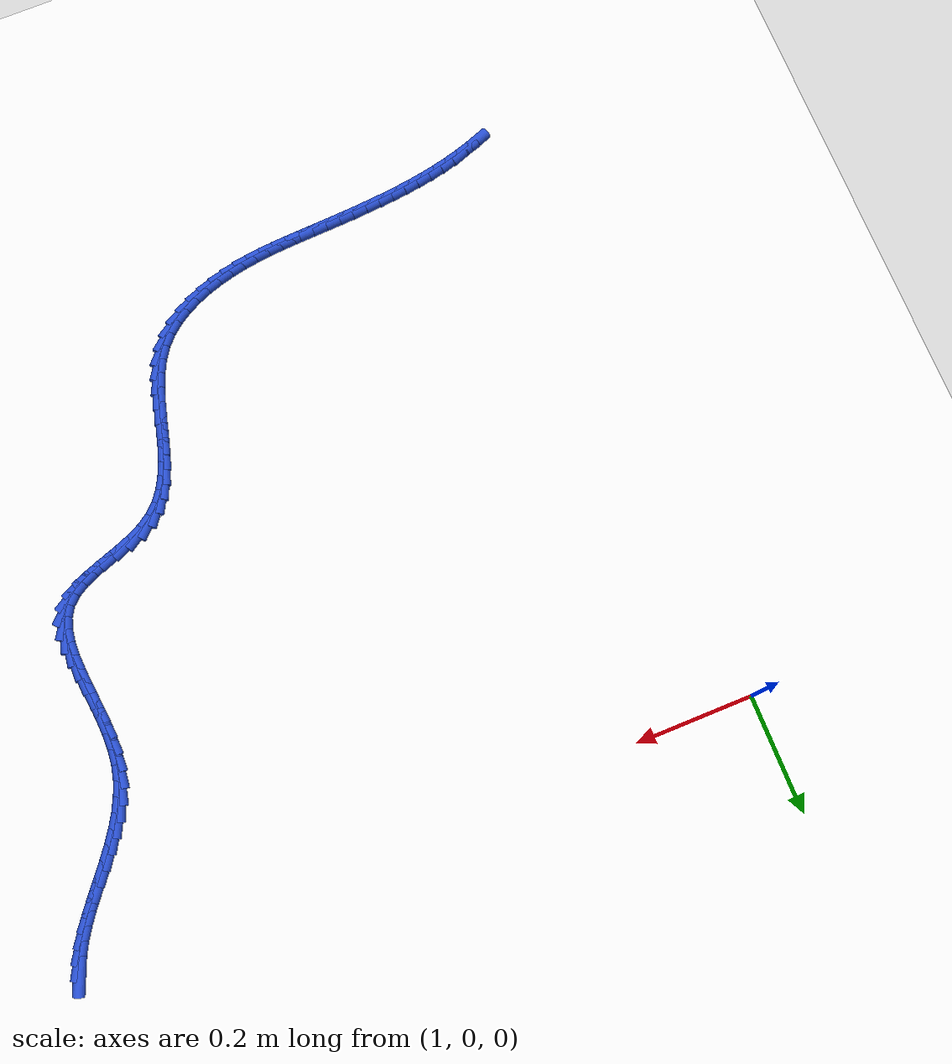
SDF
<sdf version="1.6">
 <world name="default">
  <model name="ground_plane">
   <static>1</static>
   <link name="link">
    <collision name="collision">
     <geometry><plane><normal>0 0 1</normal><size>100 100</size></plane></geometry>
     <surface><friction><ode><mu>100</mu><mu2>50</mu2></ode></friction></surface>
    </collision>
    <visual name="visual">
     <cast_shadows>0</cast_shadows>
     <geometry><plane><normal>0 0 1</normal><size>100 100</size></plane></geometry>
     <material>
      <script><uri>file://media/materials/scripts/gazebo.material</uri><name>Gazebo/WhiteGlow</name></script>
     </material>
    </visual>
   </link>
  </model>
  <model name="line">
   <link name="link_140">
    <pose>2.1353769060398338 -0.003315976786492622 0.01 0 1.57 1.183256370223583</pose>
    <collision name="collision">
     <geometry><cylinder><radius>0.01</radius><length>0.08</length></cylinder></geometry>
    </collision>
    <visual name="visual">
     <material>
      <script><name>Gazebo/Blue</name><uri>file://media/materials/scripts/gazebo.material</uri></script>
     </material>
     <geometry><cylinder><radius>0.01</radius><length>0.08</length></cylinder></geometry>
    </visual>
   </link>
   <link name="link_141">
    <pose>2.126784028048218 -0.024367556085011243 0.01 0 1.57 1.0801431410921</pose>
    <collision name="collision">
     <geometry><cylinder><radius>0.01</radius><length>0.08</length></cylinder></geometry>
    </collision>
    <visual name="visual">
     <material>
      <script><name>Gazebo/Blue</name><uri>file://media/materials/scripts/gazebo.material</uri></script>
     </material>
     <geometry><cylinder><radius>0.01</radius><length>0.08</length></cylinder></geometry>
    </visual>
   </link>
   <link name="link_142">
    <pose>2.1158497477569953 -0.04483501825897099 0.01 0 1.57 1.0022617322084868</pose>
    <collision name="collision">
     <geometry><cylinder><radius>0.01</radius><length>0.08</length></cylinder></geometry>
    </collision>
    <visual name="visual">
     <material>
      <script><name>Gazebo/Blue</name><uri>file://media/materials/scripts/gazebo.material</uri></script>
     </material>
     <geometry><cylinder><radius>0.01</radius><length>0.08</length></cylinder></geometry>
    </visual>
   </link>
   <link name="link_143">
    <pose>2.1030426288700794 -0.06488049957653083 0.01 0 1.57 0.9479147500619066</pose>
    <collision name="collision">
     <geometry><cylinder><radius>0.01</radius><length>0.08</length></cylinder></geometry>
    </collision>
    <visual name="visual">
     <material>
      <script><name>Gazebo/Blue</name><uri>file://media/materials/scripts/gazebo.material</uri></script>
     </material>
     <geometry><cylinder><radius>0.01</radius><length>0.08</length></cylinder></geometry>
    </visual>
   </link>
   <link name="link_144">
    <pose>2.0888312350913862 -0.08466613630584978 0.01 0 1.57 0.9150195043669032</pose>
    <collision name="collision">
     <geometry><cylinder><radius>0.01</radius><length>0.08</length></cylinder></geometry>
    </collision>
    <visual name="visual">
     <material>
      <script><name>Gazebo/Blue</name><uri>file://media/materials/scripts/gazebo.material</uri></script>
     </material>
     <geometry><cylinder><radius>0.01</radius><length>0.08</length></cylinder></geometry>
    </visual>
   </link>
   <link name="link_145">
    <pose>2.0736841301248314 -0.10435406471508671 0.01 0 1.57 0.9018745113495897</pose>
    <collision name="collision">
     <geometry><cylinder><radius>0.01</radius><length>0.08</length></cylinder></geometry>
    </collision>
    <visual name="visual">
     <material>
      <script><name>Gazebo/Blue</name><uri>file://media/materials/scripts/gazebo.material</uri></script>
     </material>
     <geometry><cylinder><radius>0.01</radius><length>0.08</length></cylinder></geometry>
    </visual>
   </link>
   <link name="link_146">
    <pose>2.0580698776743294 -0.12410642107240127 0.01 0 1.57 0.9074595551115804</pose>
    <collision name="collision">
     <geometry><cylinder><radius>0.01</radius><length>0.08</length></cylinder></geometry>
    </collision>
    <visual name="visual">
     <material>
      <script><name>Gazebo/Blue</name><uri>file://media/materials/scripts/gazebo.material</uri></script>
     </material>
     <geometry><cylinder><radius>0.01</radius><length>0.08</length></cylinder></geometry>
    </visual>
   </link>
   <link name="link_147">
    <pose>2.042457041443796 -0.14408534164595121 0.01 0 1.57 0.9314830730503932</pose>
    <collision name="collision">
     <geometry><cylinder><radius>0.01</radius><length>0.08</length></cylinder></geometry>
    </collision>
    <visual name="visual">
     <material>
      <script><name>Gazebo/Blue</name><uri>file://media/materials/scripts/gazebo.material</uri></script>
     </material>
     <geometry><cylinder><radius>0.01</radius><length>0.08</length></cylinder></geometry>
    </visual>
   </link>
   <link name="link_148">
    <pose>2.0273141851371475 -0.1644529627038961 0.01 0 1.57 0.9742815508657366</pose>
    <collision name="collision">
     <geometry><cylinder><radius>0.01</radius><length>0.08</length></cylinder></geometry>
    </collision>
    <visual name="visual">
     <material>
      <script><name>Gazebo/Blue</name><uri>file://media/materials/scripts/gazebo.material</uri></script>
     </material>
     <geometry><cylinder><radius>0.01</radius><length>0.08</length></cylinder></geometry>
    </visual>
   </link>
   <link name="link_149">
    <pose>2.0131098724582976 -0.18537142051439487 0.01 0 1.57 1.0365744502076442</pose>
    <collision name="collision">
     <geometry><cylinder><radius>0.01</radius><length>0.08</length></cylinder></geometry>
    </collision>
    <visual name="visual">
     <material>
      <script><name>Gazebo/Blue</name><uri>file://media/materials/scripts/gazebo.material</uri></script>
     </material>
     <geometry><cylinder><radius>0.01</radius><length>0.08</length></cylinder></geometry>
    </visual>
   </link>
   <link name="link_150">
    <pose>2.000312667111163 -0.20700285134560661 0.01 0 1.57 1.1190097163722261</pose>
    <collision name="collision">
     <geometry><cylinder><radius>0.01</radius><length>0.08</length></cylinder></geometry>
    </collision>
    <visual name="visual">
     <material>
      <script><name>Gazebo/Blue</name><uri>file://media/materials/scripts/gazebo.material</uri></script>
     </material>
     <geometry><cylinder><radius>0.01</radius><length>0.08</length></cylinder></geometry>
    </visual>
   </link>
   <link name="link_151">
    <pose>1.9893911327996585 -0.2295093914656901 0.01 0 1.57 1.2214281256925372</pose>
    <collision name="collision">
     <geometry><cylinder><radius>0.01</radius><length>0.08</length></cylinder></geometry>
    </collision>
    <visual name="visual">
     <material>
      <script><name>Gazebo/Blue</name><uri>file://media/materials/scripts/gazebo.material</uri></script>
     </material>
     <geometry><cylinder><radius>0.01</radius><length>0.08</length></cylinder></geometry>
    </visual>
   </link>
   <link name="link_152">
    <pose>1.9808138332276992 -0.25305317714280445 0.01 0 1.57 1.3418998338463526</pose>
    <collision name="collision">
     <geometry><cylinder><radius>0.01</radius><length>0.08</length></cylinder></geometry>
    </collision>
    <visual name="visual">
     <material>
      <script><name>Gazebo/Blue</name><uri>file://media/materials/scripts/gazebo.material</uri></script>
     </material>
     <geometry><cylinder><radius>0.01</radius><length>0.08</length></cylinder></geometry>
    </visual>
   </link>
   <link name="link_153">
    <pose>1.9750491937461334 -0.27779627933345025 0.01 0 1.57 1.4657979666212322</pose>
    <collision name="collision">
     <geometry><cylinder><radius>0.01</radius><length>0.08</length></cylinder></geometry>
    </collision>
    <visual name="visual">
     <material>
      <script><name>Gazebo/Blue</name><uri>file://media/materials/scripts/gazebo.material</uri></script>
     </material>
     <geometry><cylinder><radius>0.01</radius><length>0.08</length></cylinder></geometry>
    </visual>
   </link>
   <link name="link_154">
    <pose>1.972310824718808 -0.30378047972455374 0.01 0 1.57 1.5603489941205209</pose>
    <collision name="collision">
     <geometry><cylinder><radius>0.01</radius><length>0.08</length></cylinder></geometry>
    </collision>
    <visual name="visual">
     <material>
      <script><name>Gazebo/Blue</name><uri>file://media/materials/scripts/gazebo.material</uri></script>
     </material>
     <geometry><cylinder><radius>0.01</radius><length>0.08</length></cylinder></geometry>
    </visual>
   </link>
   <link name="link_155">
    <pose>1.9720298055389136 -0.3306781544198523 0.01 0 1.57 -1.517670876423367</pose>
    <collision name="collision">
     <geometry><cylinder><radius>0.01</radius><length>0.08</length></cylinder></geometry>
    </collision>
    <visual name="visual">
     <material>
      <script><name>Gazebo/Blue</name><uri>file://media/materials/scripts/gazebo.material</uri></script>
     </material>
     <geometry><cylinder><radius>0.01</radius><length>0.08</length></cylinder></geometry>
    </visual>
   </link>
   <link name="link_156">
    <pose>1.973487497057768 -0.3580910026203769 0.01 0 1.57 -1.4810349749952636</pose>
    <collision name="collision">
     <geometry><cylinder><radius>0.01</radius><length>0.08</length></cylinder></geometry>
    </collision>
    <visual name="visual">
     <material>
      <script><name>Gazebo/Blue</name><uri>file://media/materials/scripts/gazebo.material</uri></script>
     </material>
     <geometry><cylinder><radius>0.01</radius><length>0.08</length></cylinder></geometry>
    </visual>
   </link>
   <link name="link_157">
    <pose>1.975965260126689 -0.3856207235271607 0.01 0 1.57 -1.4691526071390113</pose>
    <collision name="collision">
     <geometry><cylinder><radius>0.01</radius><length>0.08</length></cylinder></geometry>
    </collision>
    <visual name="visual">
     <material>
      <script><name>Gazebo/Blue</name><uri>file://media/materials/scripts/gazebo.material</uri></script>
     </material>
     <geometry><cylinder><radius>0.01</radius><length>0.08</length></cylinder></geometry>
    </visual>
   </link>
   <link name="link_158">
    <pose>1.9787444555969924 -0.4128690163412362 0.01 0 1.57 -1.4821278005921348</pose>
    <collision name="collision">
     <geometry><cylinder><radius>0.01</radius><length>0.08</length></cylinder></geometry>
    </collision>
    <visual name="visual">
     <material>
      <script><name>Gazebo/Blue</name><uri>file://media/materials/scripts/gazebo.material</uri></script>
     </material>
     <geometry><cylinder><radius>0.01</radius><length>0.08</length></cylinder></geometry>
    </visual>
   </link>
   <link name="link_159">
    <pose>1.981106444319995 -0.43943758026363583 0.01 0 1.57 -1.5227314864544903</pose>
    <collision name="collision">
     <geometry><cylinder><radius>0.01</radius><length>0.08</length></cylinder></geometry>
    </collision>
    <visual name="visual">
     <material>
      <script><name>Gazebo/Blue</name><uri>file://media/materials/scripts/gazebo.material</uri></script>
     </material>
     <geometry><cylinder><radius>0.01</radius><length>0.08</length></cylinder></geometry>
    </visual>
   </link>
   <link name="link_160">
    <pose>1.982332587147015 -0.46492811449539206 0.01 0 1.57 1.5446368551242444</pose>
    <collision name="collision">
     <geometry><cylinder><radius>0.01</radius><length>0.08</length></cylinder></geometry>
    </collision>
    <visual name="visual">
     <material>
      <script><name>Gazebo/Blue</name><uri>file://media/materials/scripts/gazebo.material</uri></script>
     </material>
     <geometry><cylinder><radius>0.01</radius><length>0.08</length></cylinder></geometry>
    </visual>
   </link>
   <link name="link_161">
    <pose>1.9817042449293687 -0.4889423182375376 0.01 0 1.57 1.427187963736315</pose>
    <collision name="collision">
     <geometry><cylinder><radius>0.01</radius><length>0.08</length></cylinder></geometry>
    </collision>
    <visual name="visual">
     <material>
      <script><name>Gazebo/Blue</name><uri>file://media/materials/scripts/gazebo.material</uri></script>
     </material>
     <geometry><cylinder><radius>0.01</radius><length>0.08</length></cylinder></geometry>
    </visual>
   </link>
   <link name="link_162">
    <pose>1.978502778518373 -0.5110818906911044 0.01 0 1.57 1.254900337975856</pose>
    <collision name="collision">
     <geometry><cylinder><radius>0.01</radius><length>0.08</length></cylinder></geometry>
    </collision>
    <visual name="visual">
     <material>
      <script><name>Gazebo/Blue</name><uri>file://media/materials/scripts/gazebo.material</uri></script>
     </material>
     <geometry><cylinder><radius>0.01</radius><length>0.08</length></cylinder></geometry>
    </visual>
   </link>
   <link name="link_163">
    <pose>1.9720095487653446 -0.5309485310571254 0.01 0 1.57 1.022444784463935</pose>
    <collision name="collision">
     <geometry><cylinder><radius>0.01</radius><length>0.08</length></cylinder></geometry>
    </collision>
    <visual name="visual">
     <material>
      <script><name>Gazebo/Blue</name><uri>file://media/materials/scripts/gazebo.material</uri></script>
     </material>
     <geometry><cylinder><radius>0.01</radius><length>0.08</length></cylinder></geometry>
    </visual>
   </link>
   <link name="link_164">
    <pose>1.9615059165216 -0.5481439385366332 0.01 0 1.57 0.7544603703438908</pose>
    <collision name="collision">
     <geometry><cylinder><radius>0.01</radius><length>0.08</length></cylinder></geometry>
    </collision>
    <visual name="visual">
     <material>
      <script><name>Gazebo/Blue</name><uri>file://media/materials/scripts/gazebo.material</uri></script>
     </material>
     <geometry><cylinder><radius>0.01</radius><length>0.08</length></cylinder></geometry>
    </visual>
   </link>
   <link name="link_165">
    <pose>1.9463933578164998 -0.562349179718802 0.01 0 1.57 0.5444331371633061</pose>
    <collision name="collision">
     <geometry><cylinder><radius>0.01</radius><length>0.08</length></cylinder></geometry>
    </collision>
    <visual name="visual">
     <material>
      <script><name>Gazebo/Blue</name><uri>file://media/materials/scripts/gazebo.material</uri></script>
     </material>
     <geometry><cylinder><radius>0.01</radius><length>0.08</length></cylinder></geometry>
    </visual>
   </link>
   <link name="link_166">
    <pose>1.9271845586124465 -0.5739795650369315 0.01 0 1.57 0.41842915835680766</pose>
    <collision name="collision">
     <geometry><cylinder><radius>0.01</radius><length>0.08</length></cylinder></geometry>
    </collision>
    <visual name="visual">
     <material>
      <script><name>Gazebo/Blue</name><uri>file://media/materials/scripts/gazebo.material</uri></script>
     </material>
     <geometry><cylinder><radius>0.01</radius><length>0.08</length></cylinder></geometry>
    </visual>
   </link>
   <link name="link_167">
    <pose>1.9049934858499165 -0.5838477077593773 0.01 0 1.57 0.35520727981334516</pose>
    <collision name="collision">
     <geometry><cylinder><radius>0.01</radius><length>0.08</length></cylinder></geometry>
    </collision>
    <visual name="visual">
     <material>
      <script><name>Gazebo/Blue</name><uri>file://media/materials/scripts/gazebo.material</uri></script>
     </material>
     <geometry><cylinder><radius>0.01</radius><length>0.08</length></cylinder></geometry>
    </visual>
   </link>
   <link name="link_168">
    <pose>1.8809400139889894 -0.592770124611234 0.01 0 1.57 0.34078653107193857</pose>
    <collision name="collision">
     <geometry><cylinder><radius>0.01</radius><length>0.08</length></cylinder></geometry>
    </collision>
    <visual name="visual">
     <material>
      <script><name>Gazebo/Blue</name><uri>file://media/materials/scripts/gazebo.material</uri></script>
     </material>
     <geometry><cylinder><radius>0.01</radius><length>0.08</length></cylinder></geometry>
    </visual>
   </link>
   <link name="link_169">
    <pose>1.856144017489744 -0.6015633323175961 0.01 0 1.57 0.3703353449806146</pose>
    <collision name="collision">
     <geometry><cylinder><radius>0.01</radius><length>0.08</length></cylinder></geometry>
    </collision>
    <visual name="visual">
     <material>
      <script><name>Gazebo/Blue</name><uri>file://media/materials/scripts/gazebo.material</uri></script>
     </material>
     <geometry><cylinder><radius>0.01</radius><length>0.08</length></cylinder></geometry>
    </visual>
   </link>
   <link name="link_170">
    <pose>1.8317253708122583 -0.6110438476035576 0.01 0 1.57 0.44688355545659414</pose>
    <collision name="collision">
     <geometry><cylinder><radius>0.01</radius><length>0.08</length></cylinder></geometry>
    </collision>
    <visual name="visual">
     <material>
      <script><name>Gazebo/Blue</name><uri>file://media/materials/scripts/gazebo.material</uri></script>
     </material>
     <geometry><cylinder><radius>0.01</radius><length>0.08</length></cylinder></geometry>
    </visual>
   </link>
   <link name="link_171">
    <pose>1.808803948416612 -0.622028187194213 0.01 0 1.57 0.580063857678161</pose>
    <collision name="collision">
     <geometry><cylinder><radius>0.01</radius><length>0.08</length></cylinder></geometry>
    </collision>
    <visual name="visual">
     <material>
      <script><name>Gazebo/Blue</name><uri>file://media/materials/scripts/gazebo.material</uri></script>
     </material>
     <geometry><cylinder><radius>0.01</radius><length>0.08</length></cylinder></geometry>
    </visual>
   </link>
   <link name="link_172">
    <pose>1.7884995715834975 -0.635332827490764 0.01 0 1.57 0.7640787490084143</pose>
    <collision name="collision">
     <geometry><cylinder><radius>0.01</radius><length>0.08</length></cylinder></geometry>
    </collision>
    <visual name="visual">
     <material>
      <script><name>Gazebo/Blue</name><uri>file://media/materials/scripts/gazebo.material</uri></script>
     </material>
     <geometry><cylinder><radius>0.01</radius><length>0.08</length></cylinder></geometry>
    </visual>
   </link>
   <link name="link_173">
    <pose>1.771602506704225 -0.6515243560391105 0.01 0 1.57 0.9373537531942822</pose>
    <collision name="collision">
     <geometry><cylinder><radius>0.01</radius><length>0.08</length></cylinder></geometry>
    </collision>
    <visual name="visual">
     <material>
      <script><name>Gazebo/Blue</name><uri>file://media/materials/scripts/gazebo.material</uri></script>
     </material>
     <geometry><cylinder><radius>0.01</radius><length>0.08</length></cylinder></geometry>
    </visual>
   </link>
   <link name="link_174">
    <pose>1.7577932161672623 -0.6703278384996687 0.01 0 1.57 1.0773595366610875</pose>
    <collision name="collision">
     <geometry><cylinder><radius>0.01</radius><length>0.08</length></cylinder></geometry>
    </collision>
    <visual name="visual">
     <material>
      <script><name>Gazebo/Blue</name><uri>file://media/materials/scripts/gazebo.material</uri></script>
     </material>
     <geometry><cylinder><radius>0.01</radius><length>0.08</length></cylinder></geometry>
    </visual>
   </link>
   <link name="link_175">
    <pose>1.7465187932762234 -0.6912913856905651 0.01 0 1.57 1.1818102815460796</pose>
    <collision name="collision">
     <geometry><cylinder><radius>0.01</radius><length>0.08</length></cylinder></geometry>
    </collision>
    <visual name="visual">
     <material>
      <script><name>Gazebo/Blue</name><uri>file://media/materials/scripts/gazebo.material</uri></script>
     </material>
     <geometry><cylinder><radius>0.01</radius><length>0.08</length></cylinder></geometry>
    </visual>
   </link>
   <link name="link_176">
    <pose>1.7372263313347227 -0.7139631084299266 0.01 0 1.57 1.2532867629052182</pose>
    <collision name="collision">
     <geometry><cylinder><radius>0.01</radius><length>0.08</length></cylinder></geometry>
    </collision>
    <visual name="visual">
     <material>
      <script><name>Gazebo/Blue</name><uri>file://media/materials/scripts/gazebo.material</uri></script>
     </material>
     <geometry><cylinder><radius>0.01</radius><length>0.08</length></cylinder></geometry>
    </visual>
   </link>
   <link name="link_177">
    <pose>1.7293629236463746 -0.7378911175358788 0.01 0 1.57 1.2954575764042162</pose>
    <collision name="collision">
     <geometry><cylinder><radius>0.01</radius><length>0.08</length></cylinder></geometry>
    </collision>
    <visual name="visual">
     <material>
      <script><name>Gazebo/Blue</name><uri>file://media/materials/scripts/gazebo.material</uri></script>
     </material>
     <geometry><cylinder><radius>0.01</radius><length>0.08</length></cylinder></geometry>
    </visual>
   </link>
   <link name="link_178">
    <pose>1.7223756635147929 -0.7626235238265481 0.01 0 1.57 1.3111354588612656</pose>
    <collision name="collision">
     <geometry><cylinder><radius>0.01</radius><length>0.08</length></cylinder></geometry>
    </collision>
    <visual name="visual">
     <material>
      <script><name>Gazebo/Blue</name><uri>file://media/materials/scripts/gazebo.material</uri></script>
     </material>
     <geometry><cylinder><radius>0.01</radius><length>0.08</length></cylinder></geometry>
    </visual>
   </link>
   <link name="link_179">
    <pose>1.715711644243592 -0.7877084381200607 0.01 0 1.57 1.301587020566654</pose>
    <collision name="collision">
     <geometry><cylinder><radius>0.01</radius><length>0.08</length></cylinder></geometry>
    </collision>
    <visual name="visual">
     <material>
      <script><name>Gazebo/Blue</name><uri>file://media/materials/scripts/gazebo.material</uri></script>
     </material>
     <geometry><cylinder><radius>0.01</radius><length>0.08</length></cylinder></geometry>
    </visual>
   </link>
   <link name="link_180">
    <pose>1.7088179591363861 -0.812693971234543 0.01 0 1.57 1.266400246207768</pose>
    <collision name="collision">
     <geometry><cylinder><radius>0.01</radius><length>0.08</length></cylinder></geometry>
    </collision>
    <visual name="visual">
     <material>
      <script><name>Gazebo/Blue</name><uri>file://media/materials/scripts/gazebo.material</uri></script>
     </material>
     <geometry><cylinder><radius>0.01</radius><length>0.08</length></cylinder></geometry>
    </visual>
   </link>
   <link name="link_181">
    <pose>1.70114170149679 -0.8371282339881219 0.01 0 1.57 1.2036308918205603</pose>
    <collision name="collision">
     <geometry><cylinder><radius>0.01</radius><length>0.08</length></cylinder></geometry>
    </collision>
    <visual name="visual">
     <material>
      <script><name>Gazebo/Blue</name><uri>file://media/materials/scripts/gazebo.material</uri></script>
     </material>
     <geometry><cylinder><radius>0.01</radius><length>0.08</length></cylinder></geometry>
    </visual>
   </link>
   <link name="link_182">
    <pose>1.6921299646284182 -0.860559337198922 0.01 0 1.57 1.1103538434818023</pose>
    <collision name="collision">
     <geometry><cylinder><radius>0.01</radius><length>0.08</length></cylinder></geometry>
    </collision>
    <visual name="visual">
     <material>
      <script><name>Gazebo/Blue</name><uri>file://media/materials/scripts/gazebo.material</uri></script>
     </material>
     <geometry><cylinder><radius>0.01</radius><length>0.08</length></cylinder></geometry>
    </visual>
   </link>
   <link name="link_183">
    <pose>1.681229841834884 -0.88253539168507 0.01 0 1.57 0.9841055728472026</pose>
    <collision name="collision">
     <geometry><cylinder><radius>0.01</radius><length>0.08</length></cylinder></geometry>
    </collision>
    <visual name="visual">
     <material>
      <script><name>Gazebo/Blue</name><uri>file://media/materials/scripts/gazebo.material</uri></script>
     </material>
     <geometry><cylinder><radius>0.01</radius><length>0.08</length></cylinder></geometry>
    </visual>
   </link>
   <link name="link_184">
    <pose>1.6678884264198026 -0.9026045082646927 0.01 0 1.57 0.832292308078892</pose>
    <collision name="collision">
     <geometry><cylinder><radius>0.01</radius><length>0.08</length></cylinder></geometry>
    </collision>
    <visual name="visual">
     <material>
      <script><name>Gazebo/Blue</name><uri>file://media/materials/scripts/gazebo.material</uri></script>
     </material>
     <geometry><cylinder><radius>0.01</radius><length>0.08</length></cylinder></geometry>
    </visual>
   </link>
   <link name="link_185">
    <pose>1.6516946030001403 -0.920393076003273 0.01 0 1.57 0.691388290338956</pose>
    <collision name="collision">
     <geometry><cylinder><radius>0.01</radius><length>0.08</length></cylinder></geometry>
    </collision>
    <visual name="visual">
     <material>
      <script><name>Gazebo/Blue</name><uri>file://media/materials/scripts/gazebo.material</uri></script>
     </material>
     <geometry><cylinder><radius>0.01</radius><length>0.08</length></cylinder></geometry>
    </visual>
   </link>
   <link name="link_186">
    <pose>1.632940220687014 -0.935915567179966 0.01 0 1.57 0.5718771849607774</pose>
    <collision name="collision">
     <geometry><cylinder><radius>0.01</radius><length>0.08</length></cylinder></geometry>
    </collision>
    <visual name="visual">
     <material>
      <script><name>Gazebo/Blue</name><uri>file://media/materials/scripts/gazebo.material</uri></script>
     </material>
     <geometry><cylinder><radius>0.01</radius><length>0.08</length></cylinder></geometry>
    </visual>
   </link>
   <link name="link_187">
    <pose>1.6121345759142762 -0.949306499476665 0.01 0 1.57 0.47149758794579566</pose>
    <collision name="collision">
     <geometry><cylinder><radius>0.01</radius><length>0.08</length></cylinder></geometry>
    </collision>
    <visual name="visual">
     <material>
      <script><name>Gazebo/Blue</name><uri>file://media/materials/scripts/gazebo.material</uri></script>
     </material>
     <geometry><cylinder><radius>0.01</radius><length>0.08</length></cylinder></geometry>
    </visual>
   </link>
   <link name="link_188">
    <pose>1.5897870294028482 -0.9607004260660067 0.01 0 1.57 0.387105081517455</pose>
    <collision name="collision">
     <geometry><cylinder><radius>0.01</radius><length>0.08</length></cylinder></geometry>
    </collision>
    <visual name="visual">
     <material>
      <script><name>Gazebo/Blue</name><uri>file://media/materials/scripts/gazebo.material</uri></script>
     </material>
     <geometry><cylinder><radius>0.01</radius><length>0.08</length></cylinder></geometry>
    </visual>
   </link>
   <link name="link_189">
    <pose>1.566406941873652 -0.9702319001206277 0.01 0 1.57 0.31555605688208965</pose>
    <collision name="collision">
     <geometry><cylinder><radius>0.01</radius><length>0.08</length></cylinder></geometry>
    </collision>
    <visual name="visual">
     <material>
      <script><name>Gazebo/Blue</name><uri>file://media/materials/scripts/gazebo.material</uri></script>
     </material>
     <geometry><cylinder><radius>0.01</radius><length>0.08</length></cylinder></geometry>
    </visual>
   </link>
   <link name="link_190">
    <pose>1.54250365841059 -0.9780354772652204 0.01 0 1.57 0.2536392770493879</pose>
    <collision name="collision">
     <geometry><cylinder><radius>0.01</radius><length>0.08</length></cylinder></geometry>
    </collision>
    <visual name="visual">
     <material>
      <script><name>Gazebo/Blue</name><uri>file://media/materials/scripts/gazebo.material</uri></script>
     </material>
     <geometry><cylinder><radius>0.01</radius><length>0.08</length></cylinder></geometry>
    </visual>
   </link>
   <link name="link_191">
    <pose>1.518485108645509 -0.9842616161773462 0.01 0 1.57 0.19896079245047651</pose>
    <collision name="collision">
     <geometry><cylinder><radius>0.01</radius><length>0.08</length></cylinder></geometry>
    </collision>
    <visual name="visual">
     <material>
      <script><name>Gazebo/Blue</name><uri>file://media/materials/scripts/gazebo.material</uri></script>
     </material>
     <geometry><cylinder><radius>0.01</radius><length>0.08</length></cylinder></geometry>
    </visual>
   </link>
   <link name="link_192">
    <pose>1.4944167670605655 -0.9891144762501903 0.01 0 1.57 0.1519829808487084</pose>
    <collision name="collision">
     <geometry><cylinder><radius>0.01</radius><length>0.08</length></cylinder></geometry>
    </collision>
    <visual name="visual">
     <material>
      <script><name>Gazebo/Blue</name><uri>file://media/materials/scripts/gazebo.material</uri></script>
     </material>
     <geometry><cylinder><radius>0.01</radius><length>0.08</length></cylinder></geometry>
    </visual>
   </link>
   <link name="link_193">
    <pose>1.470291897712898 -0.9928095402619201 0.01 0 1.57 0.11331829127239959</pose>
    <collision name="collision">
     <geometry><cylinder><radius>0.01</radius><length>0.08</length></cylinder></geometry>
    </collision>
    <visual name="visual">
     <material>
      <script><name>Gazebo/Blue</name><uri>file://media/materials/scripts/gazebo.material</uri></script>
     </material>
     <geometry><cylinder><radius>0.01</radius><length>0.08</length></cylinder></geometry>
    </visual>
   </link>
   <link name="link_194">
    <pose>1.446103764659646 -0.9955622909907035 0.01 0 1.57 0.08332173595406887</pose>
    <collision name="collision">
     <geometry><cylinder><radius>0.01</radius><length>0.08</length></cylinder></geometry>
    </collision>
    <visual name="visual">
     <material>
      <script><name>Gazebo/Blue</name><uri>file://media/materials/scripts/gazebo.material</uri></script>
     </material>
     <geometry><cylinder><radius>0.01</radius><length>0.08</length></cylinder></geometry>
    </visual>
   </link>
   <link name="link_195">
    <pose>1.4218456319579473 -0.9975882112147065 0.01 0 1.57 0.062158601509778186</pose>
    <collision name="collision">
     <geometry><cylinder><radius>0.01</radius><length>0.08</length></cylinder></geometry>
    </collision>
    <visual name="visual">
     <material>
      <script><name>Gazebo/Blue</name><uri>file://media/materials/scripts/gazebo.material</uri></script>
     </material>
     <geometry><cylinder><radius>0.01</radius><length>0.08</length></cylinder></geometry>
    </visual>
   </link>
   <link name="link_196">
    <pose>1.3975107636649415 -0.9991027837120975 0.01 0 1.57 0.049868138049355915</pose>
    <collision name="collision">
     <geometry><cylinder><radius>0.01</radius><length>0.08</length></cylinder></geometry>
    </collision>
    <visual name="visual">
     <material>
      <script><name>Gazebo/Blue</name><uri>file://media/materials/scripts/gazebo.material</uri></script>
     </material>
     <geometry><cylinder><radius>0.01</radius><length>0.08</length></cylinder></geometry>
    </visual>
   </link>
   <link name="link_197">
    <pose>1.3730924238377669 -1.0003214912610436 0.01 0 1.57 0.04622195335109133</pose>
    <collision name="collision">
     <geometry><cylinder><radius>0.01</radius><length>0.08</length></cylinder></geometry>
    </collision>
    <visual name="visual">
     <material>
      <script><name>Gazebo/Blue</name><uri>file://media/materials/scripts/gazebo.material</uri></script>
     </material>
     <geometry><cylinder><radius>0.01</radius><length>0.08</length></cylinder></geometry>
    </visual>
   </link>
   <link name="link_198">
    <pose>1.3485852471573474 -1.001455068237351 0.01 0 1.57 0.048267311993625675</pose>
    <collision name="collision">
     <geometry><cylinder><radius>0.01</radius><length>0.08</length></cylinder></geometry>
    </collision>
    <visual name="visual">
     <material>
      <script><name>Gazebo/Blue</name><uri>file://media/materials/scripts/gazebo.material</uri></script>
     </material>
     <geometry><cylinder><radius>0.01</radius><length>0.08</length></cylinder></geometry>
    </visual>
   </link>
   <link name="link_199">
    <pose>1.3240045981567927 -1.0026424323154983 0.01 0 1.57 0.05373559207376351</pose>
    <collision name="collision">
     <geometry><cylinder><radius>0.01</radius><length>0.08</length></cylinder></geometry>
    </collision>
    <visual name="visual">
     <material>
      <script><name>Gazebo/Blue</name><uri>file://media/materials/scripts/gazebo.material</uri></script>
     </material>
     <geometry><cylinder><radius>0.01</radius><length>0.08</length></cylinder></geometry>
    </visual>
   </link>
   <link name="link_200">
    <pose>1.2993819131755544 -1.003966821847907 0.01 0 1.57 0.06256616765766247</pose>
    <collision name="collision">
     <geometry><cylinder><radius>0.01</radius><length>0.08</length></cylinder></geometry>
    </collision>
    <visual name="visual">
     <material>
      <script><name>Gazebo/Blue</name><uri>file://media/materials/scripts/gazebo.material</uri></script>
     </material>
     <geometry><cylinder><radius>0.01</radius><length>0.08</length></cylinder></geometry>
    </visual>
   </link>
   <link name="link_201">
    <pose>1.2747490486101485 -1.0055100199372236 0.01 0 1.57 0.0747770446269661</pose>
    <collision name="collision">
     <geometry><cylinder><radius>0.01</radius><length>0.08</length></cylinder></geometry>
    </collision>
    <visual name="visual">
     <material>
      <script><name>Gazebo/Blue</name><uri>file://media/materials/scripts/gazebo.material</uri></script>
     </material>
     <geometry><cylinder><radius>0.01</radius><length>0.08</length></cylinder></geometry>
    </visual>
   </link>
   <link name="link_202">
    <pose>1.250137860857091 -1.0073538096860954 0.01 0 1.57 0.09040344415706729</pose>
    <collision name="collision">
     <geometry><cylinder><radius>0.01</radius><length>0.08</length></cylinder></geometry>
    </collision>
    <visual name="visual">
     <material>
      <script><name>Gazebo/Blue</name><uri>file://media/materials/scripts/gazebo.material</uri></script>
     </material>
     <geometry><cylinder><radius>0.01</radius><length>0.08</length></cylinder></geometry>
    </visual>
   </link>
   <link name="link_203">
    <pose>1.2255802063128978 -1.0095799741971694 0.01 0 1.57 0.10949384709928789</pose>
    <collision name="collision">
     <geometry><cylinder><radius>0.01</radius><length>0.08</length></cylinder></geometry>
    </collision>
    <visual name="visual">
     <material>
      <script><name>Gazebo/Blue</name><uri>file://media/materials/scripts/gazebo.material</uri></script>
     </material>
     <geometry><cylinder><radius>0.01</radius><length>0.08</length></cylinder></geometry>
    </visual>
   </link>
   <link name="link_204">
    <pose>1.2011079413740853 -1.0122702965730923 0.01 0 1.57 0.13210481715553798</pose>
    <collision name="collision">
     <geometry><cylinder><radius>0.01</radius><length>0.08</length></cylinder></geometry>
    </collision>
    <visual name="visual">
     <material>
      <script><name>Gazebo/Blue</name><uri>file://media/materials/scripts/gazebo.material</uri></script>
     </material>
     <geometry><cylinder><radius>0.01</radius><length>0.08</length></cylinder></geometry>
    </visual>
   </link>
   <link name="link_205">
    <pose>1.1767529224371687 -1.0155065599165114 0.01 0 1.57 0.1582943543375251</pose>
    <collision name="collision">
     <geometry><cylinder><radius>0.01</radius><length>0.08</length></cylinder></geometry>
    </collision>
    <visual name="visual">
     <material>
      <script><name>Gazebo/Blue</name><uri>file://media/materials/scripts/gazebo.material</uri></script>
     </material>
     <geometry><cylinder><radius>0.01</radius><length>0.08</length></cylinder></geometry>
    </visual>
   </link>
   <link name="link_206">
    <pose>1.1525470058986647 -1.0193705473300734 0.01 0 1.57 0.18811354297203783</pose>
    <collision name="collision">
     <geometry><cylinder><radius>0.01</radius><length>0.08</length></cylinder></geometry>
    </collision>
    <visual name="visual">
     <material>
      <script><name>Gazebo/Blue</name><uri>file://media/materials/scripts/gazebo.material</uri></script>
     </material>
     <geometry><cylinder><radius>0.01</radius><length>0.08</length></cylinder></geometry>
    </visual>
   </link>
   <link name="link_207">
    <pose>1.128522048155089 -1.0239440419164252 0.01 0 1.57 0.22159633713160634</pose>
    <collision name="collision">
     <geometry><cylinder><radius>0.01</radius><length>0.08</length></cylinder></geometry>
    </collision>
    <visual name="visual">
     <material>
      <script><name>Gazebo/Blue</name><uri>file://media/materials/scripts/gazebo.material</uri></script>
     </material>
     <geometry><cylinder><radius>0.01</radius><length>0.08</length></cylinder></geometry>
    </visual>
   </link>
   <link name="link_208">
    <pose>1.1047099056029575 -1.029308826778214 0.01 0 1.57 0.25874749832101923</pose>
    <collision name="collision">
     <geometry><cylinder><radius>0.01</radius><length>0.08</length></cylinder></geometry>
    </collision>
    <visual name="visual">
     <material>
      <script><name>Gazebo/Blue</name><uri>file://media/materials/scripts/gazebo.material</uri></script>
     </material>
     <geometry><cylinder><radius>0.01</radius><length>0.08</length></cylinder></geometry>
    </visual>
   </link>
   <link name="link_209">
    <pose>1.081142434638787 -1.0355466850180868 0.01 0 1.57 0.2995289907535612</pose>
    <collision name="collision">
     <geometry><cylinder><radius>0.01</radius><length>0.08</length></cylinder></geometry>
    </collision>
    <visual name="visual">
     <material>
      <script><name>Gazebo/Blue</name><uri>file://media/materials/scripts/gazebo.material</uri></script>
     </material>
     <geometry><cylinder><radius>0.01</radius><length>0.08</length></cylinder></geometry>
    </visual>
   </link>
   <link name="link_210">
    <pose>1.057851491659093 -1.0427393997386898 0.01 0 1.57 0.3438455581269029</pose>
    <collision name="collision">
     <geometry><cylinder><radius>0.01</radius><length>0.08</length></cylinder></geometry>
    </collision>
    <visual name="visual">
     <material>
      <script><name>Gazebo/Blue</name><uri>file://media/materials/scripts/gazebo.material</uri></script>
     </material>
     <geometry><cylinder><radius>0.01</radius><length>0.08</length></cylinder></geometry>
    </visual>
   </link>
  </model>
 </world>
</sdf>
